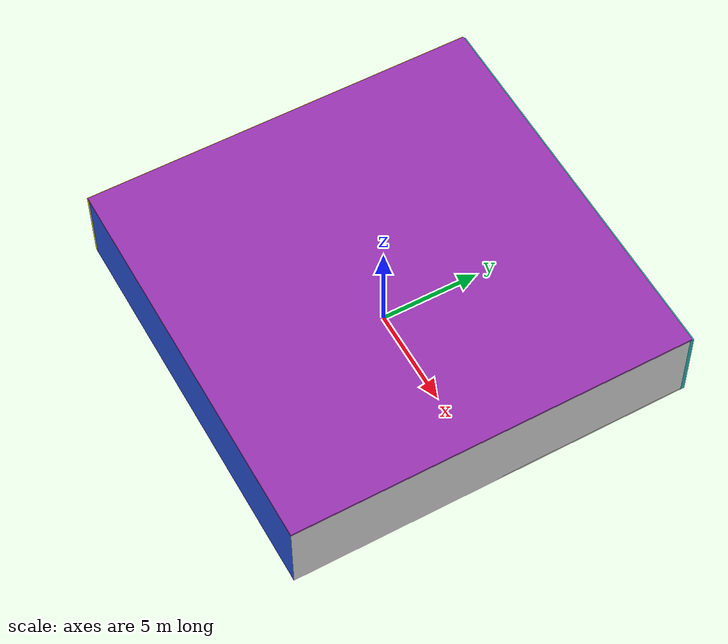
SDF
<sdf version="1.4">
 <world name="default">
  <physics type="ode">
   <max_step_size>0.001</max_step_size>
   <real_time_factor>1</real_time_factor>
   <real_time_update_rate>1000</real_time_update_rate>
   <gravity>0 0 -9.8</gravity>
  </physics>
  <scene><ambient>0.4 0.4 0.4 1</ambient><background>0.7 0.7 0.7 1</background><shadows>1</shadows></scene>
  <model name="Surrounding">
   <static>1</static>
   <link name="Ceiling">
    <collision name="Ceiling_Collision"><geometry><box><size>20 20 0.1</size></box></geometry></collision>
    <visual name="Ceiling_Visual">
     <geometry><box><size>20 20 0.1</size></box></geometry>
     <material>
      <script><uri>file://media/materials/scripts/gazebo.material</uri><name>Gazebo/PurpleGlow</name></script>
     </material>
    </visual>
    <pose>0 0 4.05 0 0 0</pose>
   </link>
   <link name="Wall_South">
    <collision name="Wall_South_Collision">
     <geometry><box><size>20 0 4</size></box></geometry>
     <pose>0 0 2 0 -0 0</pose>
    </collision>
    <visual name="Wall_South_Visual">
     <pose>0 0 2 0 -0 0</pose>
     <geometry><box><size>20 0 4</size></box></geometry>
     <material>
      <script><uri>file://media/materials/scripts/gazebo.material</uri><name>Gazebo/BlueLaser</name></script>
     </material>
    </visual>
    <velocity_decay><linear>0</linear><angular>0</angular></velocity_decay>
    <pose>0 -10 0 0 -0 0</pose>
   </link>
   <link name="Wall_East">
    <collision name="Wall_21_Collision">
     <geometry><box><size>20 0 4</size></box></geometry>
     <pose>0 0 2 0 -0 0</pose>
    </collision>
    <visual name="Wall_21_Visual">
     <pose>0 0 2 0 -0 0</pose>
     <geometry><box><size>20 0 4</size></box></geometry>
     <material>
      <script><uri>file://media/materials/scripts/gazebo.material</uri><name>Gazebo/WhiteGlow</name></script>
     </material>
    </visual>
    <velocity_decay><linear>0</linear><angular>0</angular></velocity_decay>
    <pose>10 0 0 0 -0 1.5708</pose>
   </link>
   <link name="Wall_North">
    <collision name="Wall_22_Collision">
     <geometry><box><size>20 0.2 4</size></box></geometry>
     <pose>0 0 2 0 -0 0</pose>
    </collision>
    <visual name="Wall_22_Visual">
     <pose>0 0 2 0 -0 0</pose>
     <geometry><box><size>20 0.2 4</size></box></geometry>
     <material>
      <script><uri>file://media/materials/scripts/gazebo.material</uri><name>Gazebo/TurquoiseGlow</name></script>
     </material>
    </visual>
    <velocity_decay><linear>0</linear><angular>0</angular></velocity_decay>
    <pose>0 10 0 0 -0 0</pose>
   </link>
   <link name="Wall_West">
    <collision name="Wall_23_Collision">
     <geometry><box><size>20 0.2 4</size></box></geometry>
     <pose>0 0 2 0 -0 0</pose>
    </collision>
    <visual name="Wall_23_Visual">
     <pose>0 0 2 0 -0 0</pose>
     <geometry><box><size>20 0.2 4</size></box></geometry>
     <material>
      <script><uri>file://media/materials/scripts/gazebo.material</uri><name>Gazebo/Yellow</name></script>
     </material>
    </visual>
    <velocity_decay><linear>0</linear><angular>0</angular></velocity_decay>
    <pose>-10 0 0 0 0 -1.5708</pose>
   </link>
   <link name="Ground_link">
    <collision name="collision">
     <pose>0 0 .05 0 -0 0</pose>
     <geometry><box><size>20 20 0.1</size></box></geometry>
    </collision>
    <visual name="visual">
     <pose>0 0 .05 0 -0 0</pose>
     <geometry><box><size>20 20 0.1</size></box></geometry>
     <material>
      <script><uri>file://media/materials/scripts/gazebo.material</uri><name>Gazebo/PaintedWall</name></script>
     </material>
    </visual>
   </link>
   <static>1</static>
  </model>
  <spherical_coordinates>
   <surface_model>EARTH_WGS84</surface_model>
   <latitude_deg>0</latitude_deg>
   <longitude_deg>0</longitude_deg>
   <elevation>0</elevation>
   <heading_deg>0</heading_deg>
  </spherical_coordinates>
  <light name="lightball_0" type="diffuse">
   <diffuse>0.8 0.8 0.8 1</diffuse>
   <specular>0.2 0.2 0.2 1</specular>
   <attenuation>
    <range>100</range>
    <constant>0.7</constant>
    <linear>0.01</linear>
    <quadratic>0.001</quadratic>
   </attenuation>
   <direction>-0.5 0.1 -0.9</direction>
   <pose>0.096133526078 -7.53242319212 2.24415689765 0 0 0</pose>
  </light>
  <light name="lightball_1" type="diffuse">
   <diffuse>0.8 0.8 0.8 1</diffuse>
   <specular>0.2 0.2 0.2 1</specular>
   <attenuation>
    <range>100</range>
    <constant>0.7</constant>
    <linear>0.01</linear>
    <quadratic>0.001</quadratic>
   </attenuation>
   <direction>-0.5 0.1 -0.9</direction>
   <pose>4.40345985476 5.25831767023 3.72140833589 0 0 0</pose>
  </light>
  <light name="lightball_2" type="diffuse">
   <diffuse>0.8 0.8 0.8 1</diffuse>
   <specular>0.2 0.2 0.2 1</specular>
   <attenuation>
    <range>100</range>
    <constant>0.7</constant>
    <linear>0.01</linear>
    <quadratic>0.001</quadratic>
   </attenuation>
   <direction>-0.5 0.1 -0.9</direction>
   <pose>2.28441853696 -9.95023366371 0.59443141178 0 0 0</pose>
  </light>
  <light name="lightball_3" type="diffuse">
   <diffuse>0.8 0.8 0.8 1</diffuse>
   <specular>0.2 0.2 0.2 1</specular>
   <attenuation>
    <range>100</range>
    <constant>0.7</constant>
    <linear>0.01</linear>
    <quadratic>0.001</quadratic>
   </attenuation>
   <direction>-0.5 0.1 -0.9</direction>
   <pose>5.32942349781 -7.44688119615 3.01461654601 0 0 0</pose>
  </light>
  <light name="lightball_4" type="diffuse">
   <diffuse>0.8 0.8 0.8 1</diffuse>
   <specular>0.2 0.2 0.2 1</specular>
   <attenuation>
    <range>100</range>
    <constant>0.7</constant>
    <linear>0.01</linear>
    <quadratic>0.001</quadratic>
   </attenuation>
   <direction>-0.5 0.1 -0.9</direction>
   <pose>6.48384981198 4.4434622607 1.51614735156 0 0 0</pose>
  </light>
  <light name="lightball_5" type="diffuse">
   <diffuse>0.8 0.8 0.8 1</diffuse>
   <specular>0.2 0.2 0.2 1</specular>
   <attenuation>
    <range>100</range>
    <constant>0.7</constant>
    <linear>0.01</linear>
    <quadratic>0.001</quadratic>
   </attenuation>
   <direction>-0.5 0.1 -0.9</direction>
   <pose>-3.63192111291 -2.22868590564 2.04831025314 0 0 0</pose>
  </light>
  <light name="lightball_6" type="diffuse">
   <diffuse>0.8 0.8 0.8 1</diffuse>
   <specular>0.2 0.2 0.2 1</specular>
   <attenuation>
    <range>100</range>
    <constant>0.7</constant>
    <linear>0.01</linear>
    <quadratic>0.001</quadratic>
   </attenuation>
   <direction>-0.5 0.1 -0.9</direction>
   <pose>-6.49138883141 4.31810533639 0.762922830406 0 0 0</pose>
  </light>
  <light name="lightball_7" type="diffuse">
   <diffuse>0.8 0.8 0.8 1</diffuse>
   <specular>0.2 0.2 0.2 1</specular>
   <attenuation>
    <range>100</range>
    <constant>0.7</constant>
    <linear>0.01</linear>
    <quadratic>0.001</quadratic>
   </attenuation>
   <direction>-0.5 0.1 -0.9</direction>
   <pose>6.12961190629 5.23528079981 1.01496442963 0 0 0</pose>
  </light>
  <include><uri>model://cabinet</uri><pose>4.74360341313 2.54867887122 0 0 0 2.78773734438</pose></include>
  <include><uri>model://cabinet</uri><pose>7.699550959 5.65584564261 0 0 0 1.05977817946</pose></include>
 </world>
</sdf>

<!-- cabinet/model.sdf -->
<sdf version="1.5">
  <model name="cabinet">
    <static>true</static>
    <link name="cabinet_bottom_plate">
      <inertial>
        <pose>0 0 -1 0 0 0</pose>
        <inertia>
          <ixx>2.050000</ixx>
          <ixy>0</ixy>
          <ixz>0</ixz>
          <iyy>2.050000</iyy>
          <iyz>0</iyz>
          <izz>2.050000</izz>
        </inertia>
        <mass>25.000000</mass>
      </inertial>
      <collision name="cabinet_bottom_plate_geom">
        <pose>0 0 0.010000 0 0 0</pose>
        <geometry>
          <box>
            <size>0.450000 0.450000 0.020000</size>
          </box>
        </geometry>
      </collision>
      <visual name="cabinet_bottom_plate_geom_visual">
        <pose>0 0 0.010000 0 0 0</pose>
        <geometry>
          <box>
            <size>0.450000 0.450000 0.020000</size>
          </box>
        </geometry>
        <material>
          <script>
            <uri>model://media/materials/scripts/gazebo.material</uri>
            <name>Gazebo/Wood</name>
          </script>
        </material>
      </visual>
      <collision name="cabinet_bottom_plate_geom_cabinet_back_plate">
        <pose>0.235000 0 0.510000 0 0 0</pose>
        <geometry>
          <box>
            <size>0.020000 0.450000 1.020000</size>
          </box>
        </geometry>
      </collision>
      <visual name="cabinet_bottom_plate_geom_cabinet_back_plate_visual">
        <pose>0.235000 0 0.510000 0 0 0</pose>
        <geometry>
          <box>
            <size>0.020000 0.450000 1.020000</size>
          </box>
        </geometry>
        <material>
          <script>
            <uri>model://media/materials/scripts/gazebo.material</uri>
            <name>Gazebo/Wood</name>
          </script>
        </material>
      </visual>
      <collision name="cabinet_bottom_plate_geom_cabinet_left_plate">
        <pose>0 0.235000 0.510000 0 0 0</pose>
        <geometry>
          <box>
            <size>0.450000 0.020000 1.020000</size>
          </box>
        </geometry>
      </collision>
      <visual name="cabinet_bottom_plate_geom_cabinet_left_plate_visual">
        <pose>0 0.235000 0.510000 0 0 0</pose>
        <geometry>
          <box>
            <size>0.450000 0.020000 1.020000</size>
          </box>
        </geometry>
        <material>
          <script>
            <uri>model://media/materials/scripts/gazebo.material</uri>
            <name>Gazebo/Wood</name>
          </script>
        </material>
      </visual>
      <collision name="cabinet_bottom_plate_geom_cabinet_middle_plate">
        <pose>0 0 0.510000 0 0 0</pose>
        <geometry>
          <box>
            <size>0.450000 0.450000 0.020000</size>
          </box>
        </geometry>
      </collision>
      <visual name="cabinet_bottom_plate_geom_cabinet_middle_plate_visual">
        <pose>0 0 0.510000 0 0 0</pose>
        <geometry>
          <box>
            <size>0.450000 0.450000 0.020000</size>
          </box>
        </geometry>
        <material>
          <script>
            <uri>model://media/materials/scripts/gazebo.material</uri>
            <name>Gazebo/Wood</name>
          </script>
        </material>
      </visual>
      <collision name="cabinet_bottom_plate_geom_cabinet_right_plate">
        <pose>0 -0.235000 0.510000 0 0 0</pose>
        <geometry>
          <box>
            <size>0.450000 0.020000 1.020000</size>
          </box>
        </geometry>
      </collision>
      <visual name="cabinet_bottom_plate_geom_cabinet_right_plate_visual">
        <pose>0 -0.235000 0.510000 0 0 0</pose>
        <geometry>
          <box>
            <size>0.450000 0.020000 1.020000</size>
          </box>
        </geometry>
        <material>
          <script>
            <uri>model://media/materials/scripts/gazebo.material</uri>
            <name>Gazebo/Wood</name>
          </script>
        </material>
      </visual>
      <collision name="cabinet_bottom_plate_geom_cabinet_top_plate">
        <pose>0 0 1.010000 0 0 0</pose>
        <geometry>
          <box>
            <size>0.450000 0.450000 0.020000</size>
          </box>
        </geometry>
      </collision>
      <visual name="cabinet_bottom_plate_geom_cabinet_top_plate_visual">
        <pose>0 0 1.010000 0 0 0</pose>
        <geometry>
          <box>
            <size>0.450000 0.450000 0.020000</size>
          </box>
        </geometry>
        <material>
          <script>
            <uri>model://media/materials/scripts/gazebo.material</uri>
            <name>Gazebo/Wood</name>
          </script>
        </material>
      </visual>
    </link>
  </model>
</sdf>
